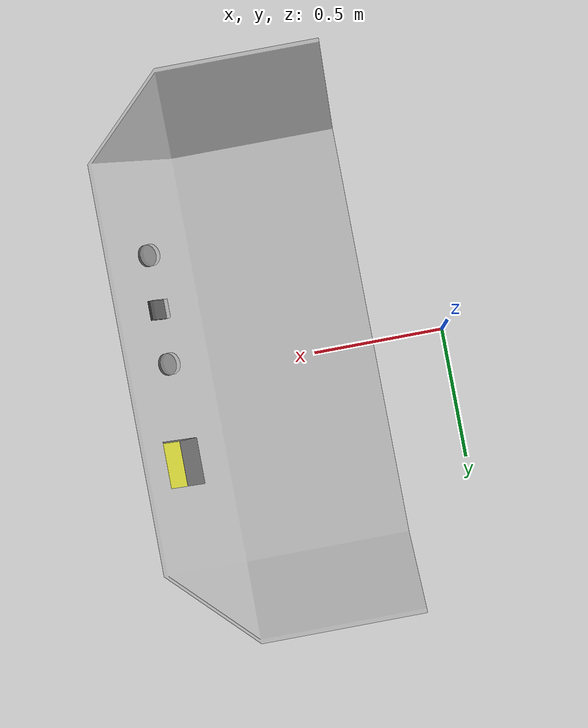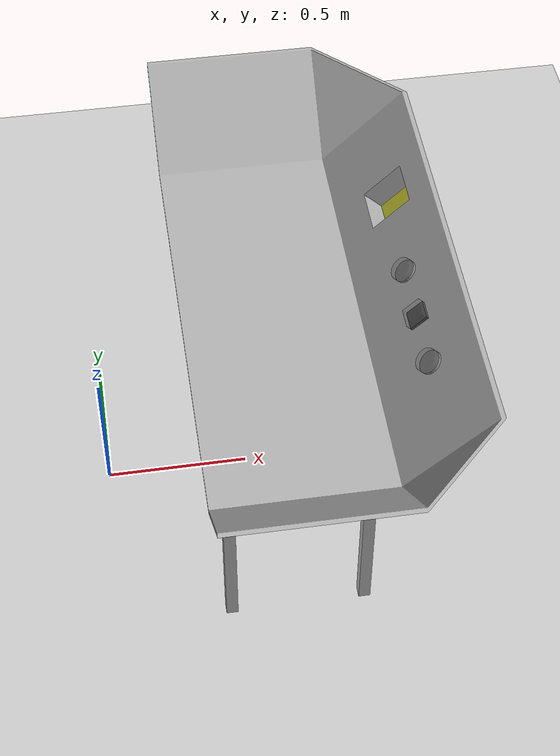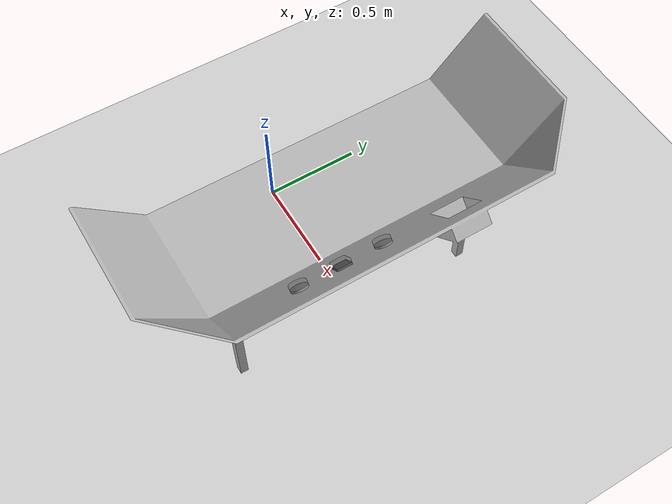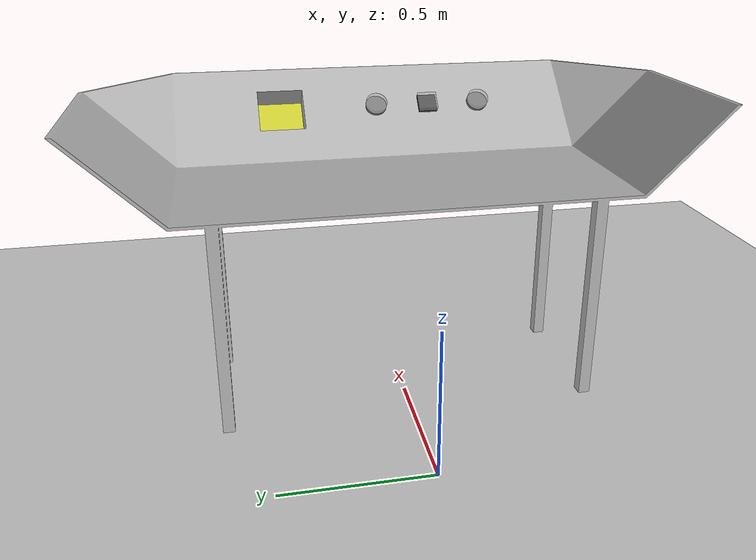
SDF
<?xml version="1.0" ?>
<sdf version="1.5">
  <world name="default">
    <physics type="ode">
      <gravity>0.0 0.0 -9.81</gravity>
    </physics>

    <include>
      <uri>model://ground_plane</uri>
      <pose>0 0 -0.01  0 0 0</pose>
    </include>
    <include>
      <uri>model://sun</uri>
    </include>

    <include>
      <uri>model://DREAM_table</uri>
      <pose>0.6 0 0  0 0 -1.570796</pose>
      <static>true</static>
    </include>

    <include>
      <uri>model://DREAM_table/tableblocker</uri>
      <pose>0.6 0 0  0 0 -1.570796</pose>
      <static>true</static>
    </include>

    <include>
      <name>light_table0</name>
      <uri>model://DREAM_light_round</uri>
      <pose>1.05 -0.0 0.92  0 -0.7854 0</pose>
      <static>true</static>
    </include>

    <include>
      <name>light_table1</name>
      <uri>model://DREAM_light_square</uri>
      <pose>1.05 -0.2 0.92  0 -0.7854 0</pose>
      <static>true</static>
    </include>

    <include>
      <name>light_table2</name>
      <uri>model://DREAM_light_round</uri>
      <pose>1.05 -0.4 0.92  0 -0.7854 0</pose>
      <static>true</static>
    </include>

  </world>
</sdf>

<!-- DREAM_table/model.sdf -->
<sdf version="1.4">
<model name="table">

    <link name="table">
      <self_collide>true</self_collide>
      <pose>0 0 0.751 0 0 0</pose>
      <inertial>
        <mass>100</mass>
        <inertia>
          <ixx>0.83</ixx>
          <ixy>0.0</ixy>
          <ixz>0.0</ixz>
          <iyy>0.83</iyy>
          <iyz>0.0</iyz>
          <izz>0.83</izz>
        </inertia>
      </inertial>
      <collision name="collision">
        <geometry>
            <mesh>
                <uri>model://DREAM_table/meshes/setup2.dae</uri>
            </mesh>
        </geometry>
        <surface>
          <friction>
            <ode>
              <mu>100</mu>
              <mu2>100</mu2>
            </ode>
          </friction>
        </surface>
      </collision>
      <visual name="visual">
        <geometry>
            <mesh>
                <uri>model://DREAM_table/meshes/setup2.dae</uri>
            </mesh>
        </geometry>
      </visual>
    </link>

    <link name="pocket">
      <self_collide>true</self_collide>
      <pose>-0.360 0.520 0.85  0.7854 0 0</pose>
      <collision name="pocket_collision">
        <geometry>
          <box><size>0.175 0.175 0.002</size></box>
        </geometry>
      </collision>
      <visual name="visual">
        <geometry>
          <box><size>0.175 0.175 0.002</size></box>
        </geometry>
        <material>
          <diffuse>0.8 0.8 0.2 1</diffuse>
          <ambient>0.7 0.7 0.1 1</ambient>
          <specular>0.95 0.95 0.8 1</specular>
          <emissive>0 0 0 0</emissive>
        </material>
      </visual>

      <sensor type="contact" name="contact">
        <visualize>true</visualize>
        <contact>
          <collision>pocket_collision</collision>
        </contact>
        <plugin name="my_plugin" filename="libDREAM_tablepocket_sensor.so"/>
      </sensor>
    </link>

    <joint name="encastrement" type="revolute">
        <pose>0 0 0 0 0 0</pose>
        <child>pocket</child>
        <parent>table</parent>
        <axis>
            <xyz>1 0 0</xyz>
            <limit>
                <lower>-0</lower>
                <upper>0</upper>
            </limit>
        </axis>
    </joint>

  </model>
</sdf>

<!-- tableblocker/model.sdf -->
<sdf version="1.4">
<model name="TableBlocker">
    <link name="transversal_right">
      <pose>0.655 0 0.005 0 0 0</pose>
      <collision name="collision">
        <geometry>
          <box>
            <size>0.01 0.5 0.01</size>
          </box>
        </geometry>
      </collision>
    </link>

    <link name="transversal_left">
      <pose>-0.655 0 0.005 0 0 0</pose>
      <collision name="collision">
        <geometry>
          <box>
            <size>0.01 0.5 0.01</size>
          </box>
        </geometry>
      </collision>
    </link>

    <link name="transversal_back">
      <pose>0 0.255 0.005 0 0 0</pose>
      <collision name="collision">
        <geometry>
          <box>
            <size>1.3 0.01 0.01</size>
          </box>
        </geometry>
      </collision>
    </link>

    <link name="transversal_frontright">
      <pose>0.630 -0.255 0.005 0 0 0</pose>
      <collision name="collision">
        <geometry>
          <box>
            <size>0.1 0.01 0.01</size>
          </box>
        </geometry>
      </collision>
    </link>

    <link name="transversal_frontleft">
      <pose>-0.630 -0.255 0.005 0 0 0</pose>
      <collision name="collision">
        <geometry>
          <box>
            <size>0.1 0.01 0.01</size>
          </box>
        </geometry>
      </collision>
    </link>

    <link name="vertical_fr">
      <pose>0.630 -0.255 0.3 0 0 0</pose>
      <collision name="collision">
        <geometry>
          <box>
            <size>0.01 0.01 0.6</size>
          </box>
        </geometry>
      </collision>
    </link>

    <link name="vertical_fl">
      <pose>-0.630 -0.255 0.3 0 0 0</pose>
      <collision name="collision">
        <geometry>
          <box>
            <size>0.01 0.01 0.6</size>
          </box>
        </geometry>
      </collision>
    </link>

    <link name="vertical_br">
      <pose>0.630 0.255 0.3 0 0 0</pose>
      <collision name="collision">
        <geometry>
          <box>
            <size>0.01 0.01 0.6</size>
          </box>
        </geometry>
      </collision>
    </link>

    <link name="vertical_bl">
      <pose>-0.630 0.255 0.3 0 0 0</pose>
      <collision name="collision">
        <geometry>
          <box>
            <size>0.01 0.01 0.6</size>
          </box>
        </geometry>
      </collision>
    </link>
  </model>
</sdf>

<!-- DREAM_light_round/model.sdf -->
<sdf version="1.4">
<model name="light_round">
  <pose>0 0 0.005 0 0 0</pose>

    <link name="base">
      <self_collide>true</self_collide>
      <pose>0 0 0 0 0 0</pose>
      <inertial>
        <mass>0.1</mass>
        <inertia>
          <ixx>0.0002</ixx>
          <ixy>0.0</ixy>
          <ixz>0.0</ixz>
          <iyy>0.0002</iyy>
          <iyz>0.0</iyz>
          <izz>0.0002</izz>
        </inertia>
      </inertial>

      <collision name="collision">
        <geometry>
          <cylinder>
            <radius>0.04</radius>
            <length>0.01</length>
          </cylinder>
        </geometry>
      </collision>

      <visual name="visual">
        <geometry>
          <cylinder>
            <radius>0.04</radius>
            <length>0.01</length>
          </cylinder>
        </geometry>
        <material>
          <diffuse>0.5 0.5 0.5 1</diffuse>
          <ambient>0.3 0.3 0.3 1</ambient>
          <specular>0.8 0.8 0.8 1</specular>
          <emissive>0 0 0 0</emissive>
        </material>
      </visual>
    </link>

    <link name="lamp">
      <self_collide>true</self_collide>
      <pose>0 0 0.015 0 0 0</pose>
      <inertial>
        <mass>0.1</mass>
        <inertia>
          <ixx>0.0002</ixx>
          <ixy>0.0</ixy>
          <ixz>0.0</ixz>
          <iyy>0.0002</iyy>
          <iyz>0.0</iyz>
          <izz>0.0002</izz>
        </inertia>
      </inertial>

      <collision name="collision">
        <geometry>
          <cylinder>
            <radius>0.04</radius>
            <length>0.02</length>
          </cylinder>
        </geometry>
      </collision>

      <visual name="visual">
        <geometry>
          <cylinder>
            <radius>0.04</radius>
            <length>0.02</length>
          </cylinder>
        </geometry>
        <material>
          <diffuse>0.5 0.5 0.5 0.1</diffuse>
          <ambient>0.3 0.3 0.3 0.1</ambient>
          <specular>0.7 0.7 0.7 0.1</specular>
          <emissive>0 0 0 1</emissive>
        </material>
        <plugin name="color_plugin" filename="libDREAM_change_color.so"/>
      </visual>
    </link>

    <joint name="fixe" type="revolute">
        <pose>0 0 0 0 0 0</pose>
        <child>lamp</child>
        <parent>base</parent>
        <axis>
            <xyz>1 0 0</xyz>
            <limit>
                <lower>0</lower>
                <upper>0</upper>
            </limit>
        </axis>
    </joint>

  </model>
</sdf>

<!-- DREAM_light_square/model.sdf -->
<sdf version="1.4">
<model name="light_square">
  <pose>0 0 0.005 0 0 0</pose>

    <link name="base">
      <self_collide>true</self_collide>
      <pose>0 0 0 0 0 0</pose>
      <inertial>
        <mass>0.1</mass>
        <inertia>
          <ixx>0.0002</ixx>
          <ixy>0.0</ixy>
          <ixz>0.0</ixz>
          <iyy>0.0002</iyy>
          <iyz>0.0</iyz>
          <izz>0.0004</izz>
        </inertia>
      </inertial>

      <collision name="collision">
        <geometry>
            <box>
              <size>0.07 0.07 0.01</size>
            </box>
        </geometry>
      </collision>

      <visual name="visual">
        <geometry>
            <box>
              <size>0.07 0.07 0.01</size>
            </box>
        </geometry>
        <material>
          <diffuse>0.3 0.3 0.3 1</diffuse>
          <ambient>0.5 0.5 0.5 1</ambient>
          <specular>0.8 0.8 0.8 1</specular>
          <emissive>0 0 0 0</emissive>
        </material>
      </visual>
    </link>

    <link name="lamp">
      <self_collide>true</self_collide>
      <pose>0 0 0.015 0 0 0</pose>
      <inertial>
        <mass>0.1</mass>
        <inertia>
          <ixx>0.0002</ixx>
          <ixy>0.0</ixy>
          <ixz>0.0</ixz>
          <iyy>0.0002</iyy>
          <iyz>0.0</iyz>
          <izz>0.0004</izz>
        </inertia>
      </inertial>

      <collision name="collision">
        <geometry>
            <box>
              <size>0.07 0.07 0.02</size>
            </box>
        </geometry>
      </collision>

      <visual name="visual">
        <geometry>
            <box>
              <size>0.07 0.07 0.02</size>
            </box>
        </geometry>
        <material>
          <diffuse>0.5 0.5 0.5 0.1</diffuse>
          <ambient>0.3 0.3 0.3 0.1</ambient>
          <specular>0.7 0.7 0.7 0.1</specular>
          <emissive>0 0 0 1</emissive>
        </material>
        <plugin name="color_plugin" filename="libDREAM_change_color.so"/>
      </visual>
    </link>

    <joint name="fixe" type="revolute">
        <pose>0 0 0 0 0 0</pose>
        <child>lamp</child>
        <parent>base</parent>
        <axis>
            <xyz>1 0 0</xyz>
            <limit>
                <lower>0</lower>
                <upper>0</upper>
            </limit>
        </axis>
    </joint>

  </model>
</sdf>
